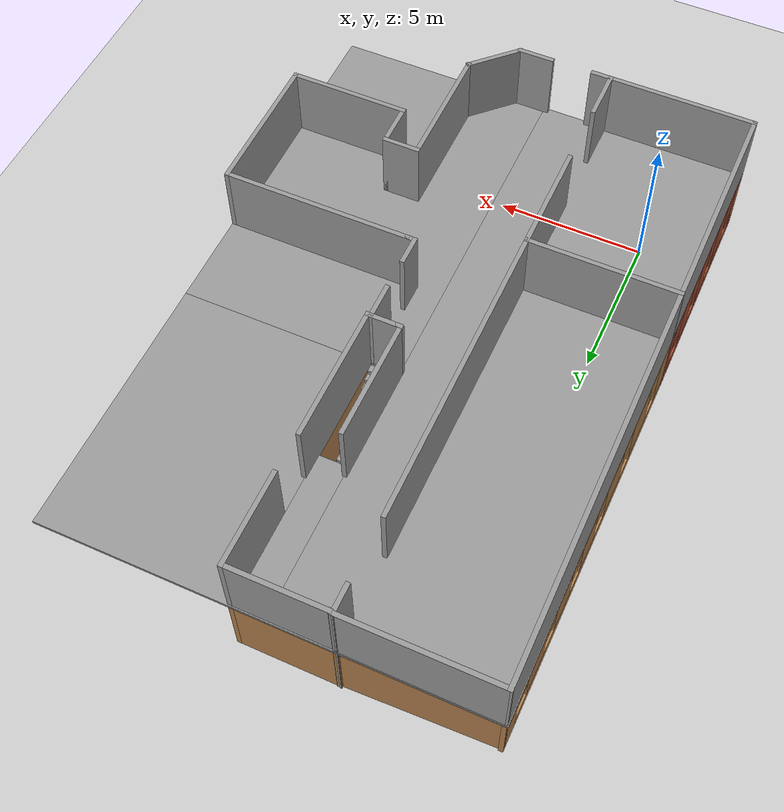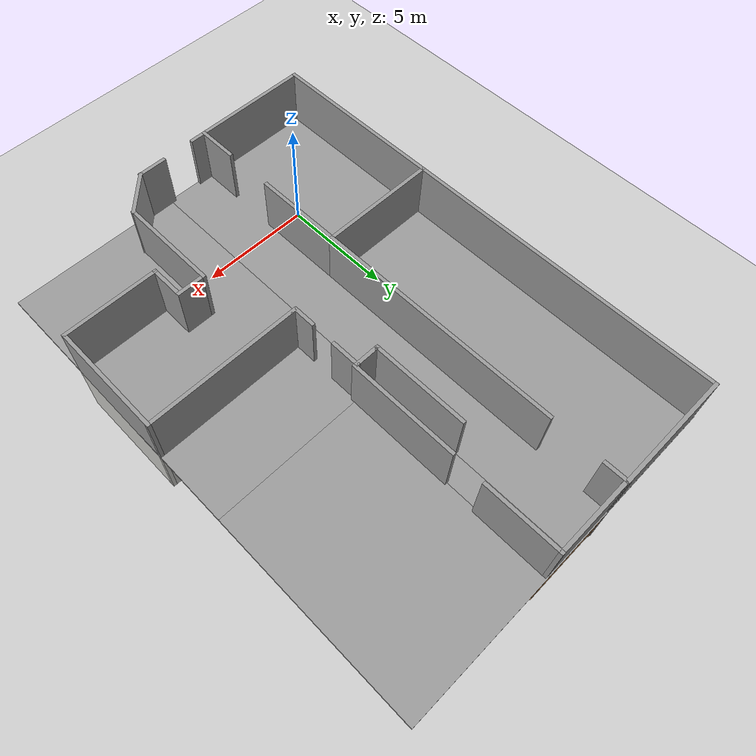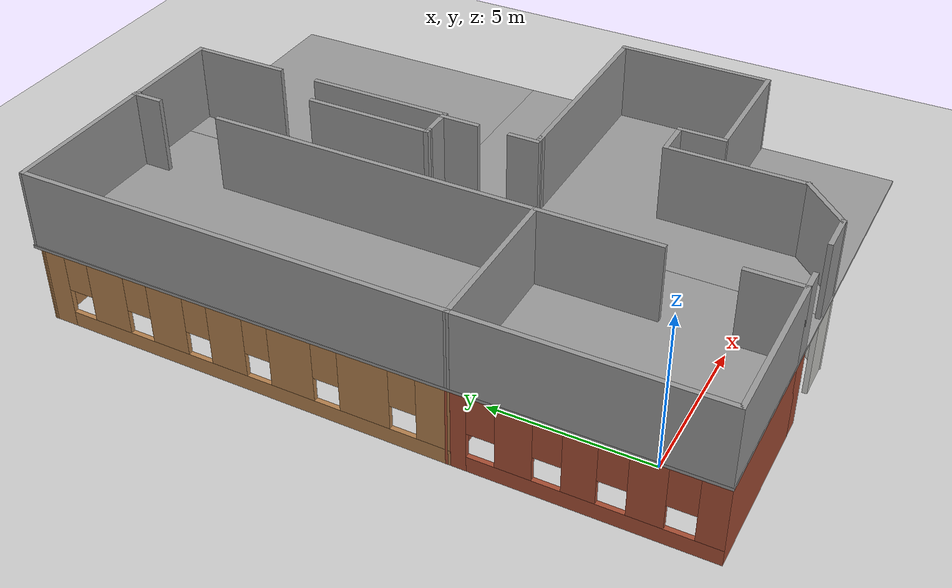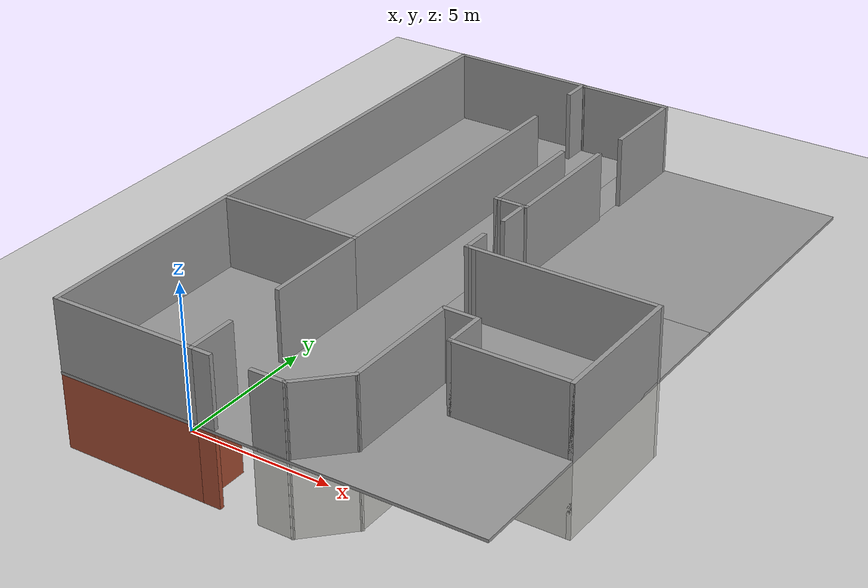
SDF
<sdf version="1.6">
 <world name="default">
  <model name="ground_plane">
   <static>1</static>
   <link name="link">
    <collision name="collision">
     <geometry><plane><normal>0 0 1</normal><size>100 100</size></plane></geometry>
     <surface><friction><ode><mu>100</mu><mu2>50</mu2></ode></friction></surface>
    </collision>
    <visual name="visual">
     <cast_shadows>0</cast_shadows>
     <geometry><plane><normal>0 0 1</normal><size>100 100</size></plane></geometry>
     <material>
      <script><uri>file://media/materials/scripts/gazebo.material</uri><name>Gazebo/Grey</name></script>
     </material>
    </visual>
   </link>
  </model>
  <model name="RPL_Floor7_Sketch">
   <pose>4.78977 7.76362 0 0 -0 0</pose>
   <link name="Floor_0">
    <pose>0.000155 0 2.5 0 -0 0</pose>
    <visual name="Floor_0_Visual_0">
     <pose>-3.6687 0 0.05 0 -0 0</pose>
     <geometry><box><size>7.07279 20.6611 0.1</size></box></geometry>
     <material>
      <script><uri>file://media/materials/scripts/gazebo.material</uri><name>Gazebo/Grey</name></script>
      <ambient>1 1 1 1</ambient>
     </material>
    </visual>
    <collision name="Floor_0_Collision_0">
     <geometry><box><size>7.07279 20.6611 0.1</size></box></geometry>
     <pose>-3.6687 0 0.05 0 -0 0</pose>
    </collision>
    <visual name="Floor_0_Visual_1">
     <pose>3.53639 -4.35677 0.05 0 -0 0</pose>
     <geometry><box><size>7.3374 11.9476 0.1</size></box></geometry>
     <material>
      <script><uri>file://media/materials/scripts/gazebo.material</uri><name>Gazebo/Grey</name></script>
      <ambient>1 1 1 1</ambient>
     </material>
    </visual>
    <collision name="Floor_0_Collision_1">
     <geometry><box><size>7.3374 11.9476 0.1</size></box></geometry>
     <pose>3.53639 -4.35677 0.05 0 -0 0</pose>
    </collision>
    <visual name="Floor_0_Visual_2">
     <pose>4.03639 5.97379 0.05 0 -0 0</pose>
     <geometry><box><size>6.3374 8.71353 0.1</size></box></geometry>
     <material>
      <script><uri>file://media/materials/scripts/gazebo.material</uri><name>Gazebo/Grey</name></script>
      <ambient>1 1 1 1</ambient>
     </material>
    </visual>
    <collision name="Floor_0_Collision_2">
     <geometry><box><size>6.3374 8.71353 0.1</size></box></geometry>
     <pose>4.03639 5.97379 0.05 0 -0 0</pose>
    </collision>
    <visual name="Floor_0_Visual_3">
     <pose>0.367695 7.72379 0.05 0 -0 0</pose>
     <geometry><box><size>1 5.21353 0.1</size></box></geometry>
     <material>
      <script><uri>file://media/materials/scripts/gazebo.material</uri><name>Gazebo/Grey</name></script>
      <ambient>1 1 1 1</ambient>
     </material>
    </visual>
    <collision name="Floor_0_Collision_3">
     <geometry><box><size>1 5.21353 0.1</size></box></geometry>
     <pose>0.367695 7.72379 0.05 0 -0 0</pose>
    </collision>
   </link>
   <link name="Stairs_0">
    <visual name="Stairs_0_Visual_0">
     <pose>0.36785 5.00036 0.083333 0 -0 0</pose>
     <geometry><box><size>1 0.233333 0.166667</size></box></geometry>
     <material>
      <script><uri>file://media/materials/scripts/gazebo.material</uri><name>Gazebo/Grey</name></script>
      <ambient>1 1 1 1</ambient>
     </material>
    </visual>
    <collision name="Stairs_0_Collision_0">
     <geometry><box><size>1 0.233333 0.166667</size></box></geometry>
     <pose>0.36785 5.00036 0.083333 0 -0 0</pose>
    </collision>
    <visual name="Stairs_0_Visual_1">
     <pose>0.36785 4.76702 0.25 0 -0 0</pose>
     <geometry><box><size>1 0.233333 0.166667</size></box></geometry>
     <material>
      <script><uri>file://media/materials/scripts/gazebo.material</uri><name>Gazebo/Grey</name></script>
      <ambient>1 1 1 1</ambient>
     </material>
    </visual>
    <collision name="Stairs_0_Collision_1">
     <geometry><box><size>1 0.233333 0.166667</size></box></geometry>
     <pose>0.36785 4.76702 0.25 0 -0 0</pose>
    </collision>
    <visual name="Stairs_0_Visual_2">
     <pose>0.36785 4.53369 0.416667 0 -0 0</pose>
     <geometry><box><size>1 0.233333 0.166667</size></box></geometry>
     <material>
      <script><uri>file://media/materials/scripts/gazebo.material</uri><name>Gazebo/Grey</name></script>
      <ambient>1 1 1 1</ambient>
     </material>
    </visual>
    <collision name="Stairs_0_Collision_2">
     <geometry><box><size>1 0.233333 0.166667</size></box></geometry>
     <pose>0.36785 4.53369 0.416667 0 -0 0</pose>
    </collision>
    <visual name="Stairs_0_Visual_3">
     <pose>0.36785 4.30036 0.583333 0 -0 0</pose>
     <geometry><box><size>1 0.233333 0.166667</size></box></geometry>
     <material>
      <script><uri>file://media/materials/scripts/gazebo.material</uri><name>Gazebo/Grey</name></script>
      <ambient>1 1 1 1</ambient>
     </material>
    </visual>
    <collision name="Stairs_0_Collision_3">
     <geometry><box><size>1 0.233333 0.166667</size></box></geometry>
     <pose>0.36785 4.30036 0.583333 0 -0 0</pose>
    </collision>
    <visual name="Stairs_0_Visual_4">
     <pose>0.36785 4.06702 0.75 0 -0 0</pose>
     <geometry><box><size>1 0.233333 0.166667</size></box></geometry>
     <material>
      <script><uri>file://media/materials/scripts/gazebo.material</uri><name>Gazebo/Grey</name></script>
      <ambient>1 1 1 1</ambient>
     </material>
    </visual>
    <collision name="Stairs_0_Collision_4">
     <geometry><box><size>1 0.233333 0.166667</size></box></geometry>
     <pose>0.36785 4.06702 0.75 0 -0 0</pose>
    </collision>
    <visual name="Stairs_0_Visual_5">
     <pose>0.36785 3.83369 0.916667 0 -0 0</pose>
     <geometry><box><size>1 0.233333 0.166667</size></box></geometry>
     <material>
      <script><uri>file://media/materials/scripts/gazebo.material</uri><name>Gazebo/Grey</name></script>
      <ambient>1 1 1 1</ambient>
     </material>
    </visual>
    <collision name="Stairs_0_Collision_5">
     <geometry><box><size>1 0.233333 0.166667</size></box></geometry>
     <pose>0.36785 3.83369 0.916667 0 -0 0</pose>
    </collision>
    <visual name="Stairs_0_Visual_6">
     <pose>0.36785 3.60036 1.08333 0 -0 0</pose>
     <geometry><box><size>1 0.233333 0.166667</size></box></geometry>
     <material>
      <script><uri>file://media/materials/scripts/gazebo.material</uri><name>Gazebo/Grey</name></script>
      <ambient>1 1 1 1</ambient>
     </material>
    </visual>
    <collision name="Stairs_0_Collision_6">
     <geometry><box><size>1 0.233333 0.166667</size></box></geometry>
     <pose>0.36785 3.60036 1.08333 0 -0 0</pose>
    </collision>
    <visual name="Stairs_0_Visual_7">
     <pose>0.36785 3.36702 1.25 0 -0 0</pose>
     <geometry><box><size>1 0.233333 0.166667</size></box></geometry>
     <material>
      <script><uri>file://media/materials/scripts/gazebo.material</uri><name>Gazebo/Grey</name></script>
      <ambient>1 1 1 1</ambient>
     </material>
    </visual>
    <collision name="Stairs_0_Collision_7">
     <geometry><box><size>1 0.233333 0.166667</size></box></geometry>
     <pose>0.36785 3.36702 1.25 0 -0 0</pose>
    </collision>
    <visual name="Stairs_0_Visual_8">
     <pose>0.36785 3.13369 1.41667 0 -0 0</pose>
     <geometry><box><size>1 0.233333 0.166667</size></box></geometry>
     <material>
      <script><uri>file://media/materials/scripts/gazebo.material</uri><name>Gazebo/Grey</name></script>
      <ambient>1 1 1 1</ambient>
     </material>
    </visual>
    <collision name="Stairs_0_Collision_8">
     <geometry><box><size>1 0.233333 0.166667</size></box></geometry>
     <pose>0.36785 3.13369 1.41667 0 -0 0</pose>
    </collision>
    <visual name="Stairs_0_Visual_9">
     <pose>0.36785 2.90036 1.58333 0 -0 0</pose>
     <geometry><box><size>1 0.233333 0.166667</size></box></geometry>
     <material>
      <script><uri>file://media/materials/scripts/gazebo.material</uri><name>Gazebo/Grey</name></script>
      <ambient>1 1 1 1</ambient>
     </material>
    </visual>
    <collision name="Stairs_0_Collision_9">
     <geometry><box><size>1 0.233333 0.166667</size></box></geometry>
     <pose>0.36785 2.90036 1.58333 0 -0 0</pose>
    </collision>
    <visual name="Stairs_0_Visual_10">
     <pose>0.36785 2.66702 1.75 0 -0 0</pose>
     <geometry><box><size>1 0.233333 0.166667</size></box></geometry>
     <material>
      <script><uri>file://media/materials/scripts/gazebo.material</uri><name>Gazebo/Grey</name></script>
      <ambient>1 1 1 1</ambient>
     </material>
    </visual>
    <collision name="Stairs_0_Collision_10">
     <geometry><box><size>1 0.233333 0.166667</size></box></geometry>
     <pose>0.36785 2.66702 1.75 0 -0 0</pose>
    </collision>
    <visual name="Stairs_0_Visual_11">
     <pose>0.36785 2.43369 1.91667 0 -0 0</pose>
     <geometry><box><size>1 0.233333 0.166667</size></box></geometry>
     <material>
      <script><uri>file://media/materials/scripts/gazebo.material</uri><name>Gazebo/Grey</name></script>
      <ambient>1 1 1 1</ambient>
     </material>
    </visual>
    <collision name="Stairs_0_Collision_11">
     <geometry><box><size>1 0.233333 0.166667</size></box></geometry>
     <pose>0.36785 2.43369 1.91667 0 -0 0</pose>
    </collision>
    <visual name="Stairs_0_Visual_12">
     <pose>0.36785 2.20036 2.08333 0 -0 0</pose>
     <geometry><box><size>1 0.233333 0.166667</size></box></geometry>
     <material>
      <script><uri>file://media/materials/scripts/gazebo.material</uri><name>Gazebo/Grey</name></script>
      <ambient>1 1 1 1</ambient>
     </material>
    </visual>
    <collision name="Stairs_0_Collision_12">
     <geometry><box><size>1 0.233333 0.166667</size></box></geometry>
     <pose>0.36785 2.20036 2.08333 0 -0 0</pose>
    </collision>
    <visual name="Stairs_0_Visual_13">
     <pose>0.36785 1.96702 2.25 0 -0 0</pose>
     <geometry><box><size>1 0.233333 0.166667</size></box></geometry>
     <material>
      <script><uri>file://media/materials/scripts/gazebo.material</uri><name>Gazebo/Grey</name></script>
      <ambient>1 1 1 1</ambient>
     </material>
    </visual>
    <collision name="Stairs_0_Collision_13">
     <geometry><box><size>1 0.233333 0.166667</size></box></geometry>
     <pose>0.36785 1.96702 2.25 0 -0 0</pose>
    </collision>
    <visual name="Stairs_0_Visual_14">
     <pose>0.36785 1.73369 2.41667 0 -0 0</pose>
     <geometry><box><size>1 0.233333 0.166667</size></box></geometry>
     <material>
      <script><uri>file://media/materials/scripts/gazebo.material</uri><name>Gazebo/Grey</name></script>
      <ambient>1 1 1 1</ambient>
     </material>
    </visual>
    <collision name="Stairs_0_Collision_14">
     <geometry><box><size>1 0.233333 0.166667</size></box></geometry>
     <pose>0.36785 1.73369 2.41667 0 -0 0</pose>
    </collision>
   </link>
   <link name="Wall_0">
    <collision name="Wall_0_Collision">
     <geometry><box><size>5 0.15 2.5</size></box></geometry>
     <pose>0 0 1.25 0 -0 0</pose>
    </collision>
    <visual name="Wall_0_Visual">
     <pose>0 0 1.25 0 -0 0</pose>
     <geometry><box><size>5 0.15 2.5</size></box></geometry>
     <material>
      <script><uri>file://media/materials/scripts/gazebo.material</uri><name>Gazebo/Bricks</name></script>
      <ambient>1 1 1 1</ambient>
     </material>
    </visual>
    <pose>-4.70477 -2.89037 0 0 -0 3.14159</pose>
   </link>
   <link name="Wall_10">
    <collision name="Wall_10_Collision">
     <geometry><box><size>10.25 0.15 2.5</size></box></geometry>
     <pose>0 0 1.25 0 -0 0</pose>
    </collision>
    <visual name="Wall_10_Visual">
     <pose>0 0 1.25 0 -0 0</pose>
     <geometry><box><size>10.25 0.15 2.5</size></box></geometry>
     <material>
      <script><uri>file://media/materials/scripts/gazebo.material</uri><name>Gazebo/Wood</name></script>
      <ambient>1 1 1 1</ambient>
     </material>
    </visual>
    <pose>-2.27977 2.15963 0 0 -0 1.5708</pose>
   </link>
   <link name="Wall_12">
    <collision name="Wall_12_Collision">
     <geometry><box><size>0.75 0.15 2.5</size></box></geometry>
     <pose>0 0 1.25 0 -0 0</pose>
    </collision>
    <visual name="Wall_12_Visual">
     <pose>0 0 1.25 0 -0 0</pose>
     <geometry><box><size>0.75 0.15 2.5</size></box></geometry>
     <material>
      <script><uri>file://media/materials/scripts/gazebo.material</uri><name>Gazebo/Bricks</name></script>
      <ambient>1 1 1 1</ambient>
     </material>
    </visual>
    <pose>-1.97977 -10.2404 0 0 -0 0</pose>
   </link>
   <link name="Wall_22">
    <collision name="Wall_22_Collision">
     <geometry><box><size>1.25 0.15 2.5</size></box></geometry>
     <pose>0 0 1.25 0 -0 0</pose>
    </collision>
    <visual name="Wall_22_Visual">
     <pose>0 0 1.25 0 -0 0</pose>
     <geometry><box><size>1.25 0.15 2.5</size></box></geometry>
     <material>
      <script><uri>file://media/materials/scripts/gazebo.material</uri><name>Gazebo/CeilingTiled</name></script>
      <ambient>1 1 1 1</ambient>
     </material>
    </visual>
    <pose>0.322098 -10.2245 0 0 -0 0</pose>
   </link>
   <link name="Wall_23">
    <collision name="Wall_23_Collision">
     <geometry><box><size>2 0.15 2.5</size></box></geometry>
     <pose>0 0 1.25 0 -0 0</pose>
    </collision>
    <visual name="Wall_23_Visual">
     <pose>0 0 1.25 0 -0 0</pose>
     <geometry><box><size>2 0.15 2.5</size></box></geometry>
     <material>
      <script><uri>file://media/materials/scripts/gazebo.material</uri><name>Gazebo/CeilingTiled</name></script>
      <ambient>1 1 1 1</ambient>
     </material>
    </visual>
    <pose>1.52617 -9.57042 0 0 -0 0.785398</pose>
   </link>
   <link name="Wall_24">
    <collision name="Wall_24_Collision">
     <geometry><box><size>4.25 0.15 2.5</size></box></geometry>
     <pose>0 0 1.25 0 -0 0</pose>
    </collision>
    <visual name="Wall_24_Visual">
     <pose>0 0 1.25 0 -0 0</pose>
     <geometry><box><size>4.25 0.15 2.5</size></box></geometry>
     <material>
      <script><uri>file://media/materials/scripts/gazebo.material</uri><name>Gazebo/CeilingTiled</name></script>
      <ambient>1 1 1 1</ambient>
     </material>
    </visual>
    <pose>2.18025 -6.86634 0 0 -0 1.5708</pose>
   </link>
   <link name="Wall_25">
    <collision name="Wall_25_Collision">
     <geometry><box><size>1.25 0.15 2.5</size></box></geometry>
     <pose>0 0 1.25 0 -0 0</pose>
    </collision>
    <visual name="Wall_25_Visual">
     <pose>0 0 1.25 0 -0 0</pose>
     <geometry><box><size>1.25 0.15 2.5</size></box></geometry>
     <material>
      <script><uri>file://media/materials/scripts/gazebo.material</uri><name>Gazebo/CeilingTiled</name></script>
      <ambient>1 1 1 1</ambient>
     </material>
    </visual>
    <pose>2.73025 -4.81634 0 0 -0 0</pose>
   </link>
   <link name="Wall_26">
    <collision name="Wall_26_Collision">
     <geometry><box><size>1.5 0.15 2.5</size></box></geometry>
     <pose>0 0 1.25 0 -0 0</pose>
    </collision>
    <visual name="Wall_26_Visual">
     <pose>0 0 1.25 0 -0 0</pose>
     <geometry><box><size>1.5 0.15 2.5</size></box></geometry>
     <material>
      <script><uri>file://media/materials/scripts/gazebo.material</uri><name>Gazebo/CeilingTiled</name></script>
      <ambient>1 1 1 1</ambient>
     </material>
    </visual>
    <pose>3.28025 -5.49134 0 0 0 -1.5708</pose>
   </link>
   <link name="Wall_27">
    <collision name="Wall_27_Collision">
     <geometry><box><size>4 0.15 2.5</size></box></geometry>
     <pose>0 0 1.25 0 -0 0</pose>
    </collision>
    <visual name="Wall_27_Visual">
     <pose>0 0 1.25 0 -0 0</pose>
     <geometry><box><size>4 0.15 2.5</size></box></geometry>
     <material>
      <script><uri>file://media/materials/scripts/gazebo.material</uri><name>Gazebo/CeilingTiled</name></script>
      <ambient>1 1 1 1</ambient>
     </material>
    </visual>
    <pose>5.20524 -6.16634 0 0 -0 0</pose>
   </link>
   <link name="Wall_28">
    <collision name="Wall_28_Collision">
     <geometry><box><size>4.8032 0.15 2.5</size></box></geometry>
     <pose>0 0 1.25 0 -0 0</pose>
    </collision>
    <visual name="Wall_28_Visual">
     <pose>0 0 1.25 0 -0 0</pose>
     <geometry><box><size>4.8032 0.15 2.5</size></box></geometry>
     <material>
      <script><uri>file://media/materials/scripts/gazebo.material</uri><name>Gazebo/CeilingTiled</name></script>
      <ambient>1 1 1 1</ambient>
     </material>
    </visual>
    <pose>7.13025 -3.83974 0 0 -0 1.5708</pose>
   </link>
   <link name="Wall_30">
    <collision name="Wall_30_Collision">
     <geometry><box><size>0.15 0.15 2.5</size></box></geometry>
     <pose>0 0 1.25 0 -0 0</pose>
    </collision>
    <visual name="Wall_30_Visual">
     <pose>0 0 1.25 0 -0 0</pose>
     <geometry><box><size>0.15 0.15 2.5</size></box></geometry>
     <material>
      <script><uri>file://media/materials/scripts/gazebo.material</uri><name>Gazebo/Grey</name></script>
      <ambient>1 1 1 1</ambient>
     </material>
    </visual>
    <pose>1.03025 -1.51314 0 0 -0 0</pose>
   </link>
   <link name="Wall_31">
    <collision name="Wall_31_Collision">
     <geometry><box><size>0.15 0.15 2.5</size></box></geometry>
     <pose>0 0 1.25 0 -0 0</pose>
    </collision>
    <visual name="Wall_31_Visual">
     <pose>0 0 1.25 0 -0 0</pose>
     <geometry><box><size>0.15 0.15 2.5</size></box></geometry>
     <material>
      <script><uri>file://media/materials/scripts/gazebo.material</uri><name>Gazebo/Grey</name></script>
      <ambient>1 1 1 1</ambient>
     </material>
    </visual>
    <pose>1.03025 -1.51314 0 0 -0 0</pose>
   </link>
   <link name="Wall_34">
    <collision name="Wall_34_Collision">
     <geometry><box><size>6.5 0.15 2.5</size></box></geometry>
     <pose>0 0 1.25 0 -0 0</pose>
    </collision>
    <visual name="Wall_34_Visual">
     <pose>0 0 1.25 0 -0 0</pose>
     <geometry><box><size>6.5 0.15 2.5</size></box></geometry>
     <material>
      <script><uri>file://media/materials/scripts/gazebo.material</uri><name>Gazebo/CeilingTiled</name></script>
      <ambient>1 1 1 1</ambient>
     </material>
    </visual>
    <pose>3.95525 -1.51314 0 0 -0 3.14159</pose>
   </link>
   <link name="Wall_35">
    <collision name="Wall_35_Collision">
     <geometry><box><size>1 0.15 2.5</size></box></geometry>
     <pose>0 0 1.25 0 -0 0</pose>
    </collision>
    <visual name="Wall_35_Visual">
     <pose>0 0 1.25 0 -0 0</pose>
     <geometry><box><size>1 0.15 2.5</size></box></geometry>
     <material>
      <script><uri>file://media/materials/scripts/gazebo.material</uri><name>Gazebo/Wood</name></script>
      <ambient>1 1 1 1</ambient>
     </material>
    </visual>
    <pose>0.780246 -1.08814 0 0 -0 1.5708</pose>
   </link>
   <link name="Wall_37">
    <collision name="Wall_37_Collision">
     <geometry><box><size>1.25 0.15 2.5</size></box></geometry>
     <pose>0 0 1.25 0 -0 0</pose>
    </collision>
    <visual name="Wall_37_Visual">
     <pose>0 0 1.25 0 -0 0</pose>
     <geometry><box><size>1.25 0.15 2.5</size></box></geometry>
     <material>
      <script><uri>file://media/materials/scripts/gazebo.material</uri><name>Gazebo/Wood</name></script>
      <ambient>1 1 1 1</ambient>
     </material>
    </visual>
    <pose>0.796113 0.980362 0 0 -0 1.5708</pose>
   </link>
   <link name="Wall_38">
    <collision name="Wall_38_Collision">
     <geometry><box><size>1 0.15 2.5</size></box></geometry>
     <pose>0 0 1.25 0 -0 0</pose>
    </collision>
    <visual name="Wall_38_Visual">
     <pose>0 0 1.25 0 -0 0</pose>
     <geometry><box><size>1 0.15 2.5</size></box></geometry>
     <material>
      <script><uri>file://media/materials/scripts/gazebo.material</uri><name>Gazebo/Wood</name></script>
      <ambient>1 1 1 1</ambient>
     </material>
    </visual>
    <pose>0.371113 1.53036 0 0 -0 3.14159</pose>
   </link>
   <link name="Wall_4">
    <pose>-7.12977 -6.56537 0 0 0 -1.5708</pose>
    <visual name="Wall_4_Visual_0">
     <pose>-3.45071 0 1.25 0 -0 0</pose>
     <geometry><box><size>0.598591 0.15 2.5</size></box></geometry>
     <material>
      <script><uri>file://media/materials/scripts/gazebo.material</uri><name>Gazebo/Bricks</name></script>
      <ambient>1 1 1 1</ambient>
     </material>
    </visual>
    <collision name="Wall_4_Collision_0">
     <geometry><box><size>0.598591 0.15 2.5</size></box></geometry>
     <pose>-3.45071 0 1.25 0 -0 0</pose>
    </collision>
    <visual name="Wall_4_Visual_1">
     <pose>0.299295 0 0.25 0 -0 0</pose>
     <geometry><box><size>6.90141 0.15 0.5</size></box></geometry>
     <material>
      <script><uri>file://media/materials/scripts/gazebo.material</uri><name>Gazebo/Bricks</name></script>
      <ambient>1 1 1 1</ambient>
     </material>
    </visual>
    <collision name="Wall_4_Collision_1">
     <geometry><box><size>6.90141 0.15 0.5</size></box></geometry>
     <pose>0.299295 0 0.25 0 -0 0</pose>
    </collision>
    <visual name="Wall_4_Visual_2">
     <pose>-1.83624 0 1.5 0 -0 0</pose>
     <geometry><box><size>1.03034 0.15 2</size></box></geometry>
     <material>
      <script><uri>file://media/materials/scripts/gazebo.material</uri><name>Gazebo/Bricks</name></script>
      <ambient>1 1 1 1</ambient>
     </material>
    </visual>
    <collision name="Wall_4_Collision_2">
     <geometry><box><size>1.03034 0.15 2</size></box></geometry>
     <pose>-1.83624 0 1.5 0 -0 0</pose>
    </collision>
    <visual name="Wall_4_Visual_3">
     <pose>-0.056191 0 1.5 0 -0 0</pose>
     <geometry><box><size>0.929767 0.15 2</size></box></geometry>
     <material>
      <script><uri>file://media/materials/scripts/gazebo.material</uri><name>Gazebo/Bricks</name></script>
      <ambient>1 1 1 1</ambient>
     </material>
    </visual>
    <collision name="Wall_4_Collision_3">
     <geometry><box><size>0.929767 0.15 2</size></box></geometry>
     <pose>-0.056191 0 1.5 0 -0 0</pose>
    </collision>
    <visual name="Wall_4_Visual_4">
     <pose>1.70375 0 1.5 0 -0 0</pose>
     <geometry><box><size>0.990108 0.15 2</size></box></geometry>
     <material>
      <script><uri>file://media/materials/scripts/gazebo.material</uri><name>Gazebo/Bricks</name></script>
      <ambient>1 1 1 1</ambient>
     </material>
    </visual>
    <collision name="Wall_4_Collision_4">
     <geometry><box><size>0.990108 0.15 2</size></box></geometry>
     <pose>1.70375 0 1.5 0 -0 0</pose>
    </collision>
    <visual name="Wall_4_Visual_5">
     <pose>3.3744 0 1.5 0 -0 0</pose>
     <geometry><box><size>0.751199 0.15 2</size></box></geometry>
     <material>
      <script><uri>file://media/materials/scripts/gazebo.material</uri><name>Gazebo/Bricks</name></script>
      <ambient>1 1 1 1</ambient>
     </material>
    </visual>
    <collision name="Wall_4_Collision_5">
     <geometry><box><size>0.751199 0.15 2</size></box></geometry>
     <pose>3.3744 0 1.5 0 -0 0</pose>
    </collision>
    <visual name="Wall_4_Visual_6">
     <pose>-2.75141 0 1.9 0 -0 0</pose>
     <geometry><box><size>0.8 0.15 1.2</size></box></geometry>
     <material>
      <script><uri>file://media/materials/scripts/gazebo.material</uri><name>Gazebo/Bricks</name></script>
      <ambient>1 1 1 1</ambient>
     </material>
    </visual>
    <collision name="Wall_4_Collision_6">
     <geometry><box><size>0.8 0.15 1.2</size></box></geometry>
     <pose>-2.75141 0 1.9 0 -0 0</pose>
    </collision>
    <visual name="Wall_4_Visual_7">
     <pose>-0.921074 0 1.9 0 -0 0</pose>
     <geometry><box><size>0.8 0.15 1.2</size></box></geometry>
     <material>
      <script><uri>file://media/materials/scripts/gazebo.material</uri><name>Gazebo/Bricks</name></script>
      <ambient>1 1 1 1</ambient>
     </material>
    </visual>
    <collision name="Wall_4_Collision_7">
     <geometry><box><size>0.8 0.15 1.2</size></box></geometry>
     <pose>-0.921074 0 1.9 0 -0 0</pose>
    </collision>
    <visual name="Wall_4_Visual_8">
     <pose>0.808693 0 1.9 0 -0 0</pose>
     <geometry><box><size>0.8 0.15 1.2</size></box></geometry>
     <material>
      <script><uri>file://media/materials/scripts/gazebo.material</uri><name>Gazebo/Bricks</name></script>
      <ambient>1 1 1 1</ambient>
     </material>
    </visual>
    <collision name="Wall_4_Collision_8">
     <geometry><box><size>0.8 0.15 1.2</size></box></geometry>
     <pose>0.808693 0 1.9 0 -0 0</pose>
    </collision>
    <visual name="Wall_4_Visual_9">
     <pose>2.5988 0 1.9 0 -0 0</pose>
     <geometry><box><size>0.8 0.15 1.2</size></box></geometry>
     <material>
      <script><uri>file://media/materials/scripts/gazebo.material</uri><name>Gazebo/Bricks</name></script>
      <ambient>1 1 1 1</ambient>
     </material>
    </visual>
    <collision name="Wall_4_Collision_9">
     <geometry><box><size>0.8 0.15 1.2</size></box></geometry>
     <pose>2.5988 0 1.9 0 -0 0</pose>
    </collision>
   </link>
   <link name="Wall_42">
    <collision name="Wall_42_Collision">
     <geometry><box><size>0.25 0.15 2.5</size></box></geometry>
     <pose>0 0 1.25 0 -0 0</pose>
    </collision>
    <visual name="Wall_42_Visual">
     <pose>0 0 1.25 0 -0 0</pose>
     <geometry><box><size>0.25 0.15 2.5</size></box></geometry>
     <material>
      <script><uri>file://media/materials/scripts/gazebo.material</uri><name>Gazebo/Grey</name></script>
      <ambient>1 1 1 1</ambient>
     </material>
    </visual>
    <pose>-0.103887 1.53036 0 0 -0 3.14159</pose>
   </link>
   <link name="Wall_43">
    <collision name="Wall_43_Collision">
     <geometry><box><size>4 0.15 2.5</size></box></geometry>
     <pose>0 0 1.25 0 -0 0</pose>
    </collision>
    <visual name="Wall_43_Visual">
     <pose>0 0 1.25 0 -0 0</pose>
     <geometry><box><size>4 0.15 2.5</size></box></geometry>
     <material>
      <script><uri>file://media/materials/scripts/gazebo.material</uri><name>Gazebo/Wood</name></script>
      <ambient>1 1 1 1</ambient>
     </material>
    </visual>
    <pose>-0.153887 3.45536 0 0 -0 1.5708</pose>
   </link>
   <link name="Wall_45">
    <collision name="Wall_45_Collision">
     <geometry><box><size>0.25 0.15 2.5</size></box></geometry>
     <pose>0 0 1.25 0 -0 0</pose>
    </collision>
    <visual name="Wall_45_Visual">
     <pose>0 0 1.25 0 -0 0</pose>
     <geometry><box><size>0.25 0.15 2.5</size></box></geometry>
     <material>
      <script><uri>file://media/materials/scripts/gazebo.material</uri><name>Gazebo/Grey</name></script>
      <ambient>1 1 1 1</ambient>
     </material>
    </visual>
    <pose>0.846114 1.53036 0 0 -0 0</pose>
   </link>
   <link name="Wall_46">
    <collision name="Wall_46_Collision">
     <geometry><box><size>4.5 0.15 2.5</size></box></geometry>
     <pose>0 0 1.25 0 -0 0</pose>
    </collision>
    <visual name="Wall_46_Visual">
     <pose>0 0 1.25 0 -0 0</pose>
     <geometry><box><size>4.5 0.15 2.5</size></box></geometry>
     <material>
      <script><uri>file://media/materials/scripts/gazebo.material</uri><name>Gazebo/Wood</name></script>
      <ambient>1 1 1 1</ambient>
     </material>
    </visual>
    <pose>0.896113 3.70536 0 0 -0 1.5708</pose>
   </link>
   <link name="Wall_48">
    <collision name="Wall_48_Collision">
     <geometry><box><size>3.10701 0.15 2.5</size></box></geometry>
     <pose>0 0 1.25 0 -0 0</pose>
    </collision>
    <visual name="Wall_48_Visual">
     <pose>0 0 1.25 0 -0 0</pose>
     <geometry><box><size>3.10701 0.15 2.5</size></box></geometry>
     <material>
      <script><uri>file://media/materials/scripts/gazebo.material</uri><name>Gazebo/Wood</name></script>
      <ambient>1 1 1 1</ambient>
     </material>
    </visual>
    <pose>0.946638 8.73432 0 0 -0 1.5708</pose>
   </link>
   <link name="Wall_5">
    <collision name="Wall_5_Collision">
     <geometry><box><size>5 0.15 2.5</size></box></geometry>
     <pose>0 0 1.25 0 -0 0</pose>
    </collision>
    <visual name="Wall_5_Visual">
     <pose>0 0 1.25 0 -0 0</pose>
     <geometry><box><size>5 0.15 2.5</size></box></geometry>
     <material>
      <script><uri>file://media/materials/scripts/gazebo.material</uri><name>Gazebo/Bricks</name></script>
      <ambient>1 1 1 1</ambient>
     </material>
    </visual>
    <pose>-4.70477 -10.2404 0 0 -0 0</pose>
   </link>
   <link name="Wall_56">
    <collision name="Wall_56_Collision">
     <geometry><box><size>3.25 0.15 2.5</size></box></geometry>
     <pose>0 0 1.25 0 -0 0</pose>
    </collision>
    <visual name="Wall_56_Visual">
     <pose>0 0 1.25 0 -0 0</pose>
     <geometry><box><size>3.25 0.15 2.5</size></box></geometry>
     <material>
      <script><uri>file://media/materials/scripts/gazebo.material</uri><name>Gazebo/Wood</name></script>
      <ambient>1 1 1 1</ambient>
     </material>
    </visual>
    <pose>-0.603362 10.2128 0 0 -0 3.14159</pose>
   </link>
   <link name="Wall_57">
    <collision name="Wall_57_Collision">
     <geometry><box><size>0.25 0.15 2.5</size></box></geometry>
     <pose>0 0 1.25 0 -0 0</pose>
    </collision>
    <visual name="Wall_57_Visual">
     <pose>0 0 1.25 0 -0 0</pose>
     <geometry><box><size>0.25 0.15 2.5</size></box></geometry>
     <material>
      <script><uri>file://media/materials/scripts/gazebo.material</uri><name>Gazebo/Grey</name></script>
      <ambient>1 1 1 1</ambient>
     </material>
    </visual>
    <pose>-2.20166 10.2258 0 0 -0 2.87979</pose>
   </link>
   <link name="Wall_58">
    <collision name="Wall_58_Collision">
     <geometry><box><size>0.946497 0.15 2.5</size></box></geometry>
     <pose>0 0 1.25 0 -0 0</pose>
    </collision>
    <visual name="Wall_58_Visual">
     <pose>0 0 1.25 0 -0 0</pose>
     <geometry><box><size>0.946497 0.15 2.5</size></box></geometry>
     <material>
      <script><uri>file://media/materials/scripts/gazebo.material</uri><name>Gazebo/Wood</name></script>
      <ambient>1 1 1 1</ambient>
     </material>
    </visual>
    <pose>-2.24995 9.84045 0 0 0 -1.5708</pose>
   </link>
   <link name="Wall_6">
    <collision name="Wall_6_Collision">
     <geometry><box><size>1.75 0.15 2.5</size></box></geometry>
     <pose>0 0 1.25 0 -0 0</pose>
    </collision>
    <visual name="Wall_6_Visual">
     <pose>0 0 1.25 0 -0 0</pose>
     <geometry><box><size>1.75 0.15 2.5</size></box></geometry>
     <material>
      <script><uri>file://media/materials/scripts/gazebo.material</uri><name>Gazebo/Bricks</name></script>
      <ambient>1 1 1 1</ambient>
     </material>
    </visual>
    <pose>-2.27977 -9.44037 0 0 -0 1.5708</pose>
   </link>
   <link name="Wall_60">
    <collision name="Wall_60_Collision">
     <geometry><box><size>4.94918 0.15 2.5</size></box></geometry>
     <pose>0 0 1.25 0 -0 0</pose>
    </collision>
    <visual name="Wall_60_Visual">
     <pose>0 0 1.25 0 -0 0</pose>
     <geometry><box><size>4.94918 0.15 2.5</size></box></geometry>
     <material>
      <script><uri>file://media/materials/scripts/gazebo.material</uri><name>Gazebo/Wood</name></script>
      <ambient>1 1 1 1</ambient>
     </material>
    </visual>
    <pose>-4.6482 10.1049 0 0 0 -3.10814</pose>
   </link>
   <link name="Wall_61">
    <pose>-7.08811 3.59391 0 0 0 -1.57722</pose>
    <visual name="Wall_61_Visual_0">
     <pose>-6.15402 0 1.25 0 -0 0</pose>
     <geometry><box><size>0.810784 0.15 2.5</size></box></geometry>
     <material>
      <script><uri>file://media/materials/scripts/gazebo.material</uri><name>Gazebo/Wood</name></script>
      <ambient>1 1 1 1</ambient>
     </material>
    </visual>
    <collision name="Wall_61_Collision_0">
     <geometry><box><size>0.810784 0.15 2.5</size></box></geometry>
     <pose>-6.15402 0 1.25 0 -0 0</pose>
    </collision>
    <visual name="Wall_61_Visual_1">
     <pose>0.405392 0 0.25 0 -0 0</pose>
     <geometry><box><size>12.308 0.15 0.5</size></box></geometry>
     <material>
      <script><uri>file://media/materials/scripts/gazebo.material</uri><name>Gazebo/Wood</name></script>
      <ambient>1 1 1 1</ambient>
     </material>
    </visual>
    <collision name="Wall_61_Collision_1">
     <geometry><box><size>12.308 0.15 0.5</size></box></geometry>
     <pose>0.405392 0 0.25 0 -0 0</pose>
    </collision>
    <visual name="Wall_61_Visual_2">
     <pose>-4.31789 0 1.5 0 -0 0</pose>
     <geometry><box><size>1.26148 0.15 2</size></box></geometry>
     <material>
      <script><uri>file://media/materials/scripts/gazebo.material</uri><name>Gazebo/Wood</name></script>
      <ambient>1 1 1 1</ambient>
     </material>
    </visual>
    <collision name="Wall_61_Collision_2">
     <geometry><box><size>1.26148 0.15 2</size></box></geometry>
     <pose>-4.31789 0 1.5 0 -0 0</pose>
    </collision>
    <visual name="Wall_61_Visual_3">
     <pose>-2.2832 0 1.5 0 -0 0</pose>
     <geometry><box><size>1.20791 0.15 2</size></box></geometry>
     <material>
      <script><uri>file://media/materials/scripts/gazebo.material</uri><name>Gazebo/Wood</name></script>
      <ambient>1 1 1 1</ambient>
     </material>
    </visual>
    <collision name="Wall_61_Collision_3">
     <geometry><box><size>1.20791 0.15 2</size></box></geometry>
     <pose>-2.2832 0 1.5 0 -0 0</pose>
    </collision>
    <visual name="Wall_61_Visual_4">
     <pose>-0.301468 0 1.5 0 -0 0</pose>
     <geometry><box><size>1.15554 0.15 2</size></box></geometry>
     <material>
      <script><uri>file://media/materials/scripts/gazebo.material</uri><name>Gazebo/Wood</name></script>
      <ambient>1 1 1 1</ambient>
     </material>
    </visual>
    <collision name="Wall_61_Collision_4">
     <geometry><box><size>1.15554 0.15 2</size></box></geometry>
     <pose>-0.301468 0 1.5 0 -0 0</pose>
    </collision>
    <visual name="Wall_61_Visual_5">
     <pose>1.75977 0 1.5 0 -0 0</pose>
     <geometry><box><size>1.36694 0.15 2</size></box></geometry>
     <material>
      <script><uri>file://media/materials/scripts/gazebo.material</uri><name>Gazebo/Wood</name></script>
      <ambient>1 1 1 1</ambient>
     </material>
    </visual>
    <collision name="Wall_61_Collision_5">
     <geometry><box><size>1.36694 0.15 2</size></box></geometry>
     <pose>1.75977 0 1.5 0 -0 0</pose>
    </collision>
    <visual name="Wall_61_Visual_6">
     <pose>4.00574 0 1.5 0 -0 0</pose>
     <geometry><box><size>1.52501 0.15 2</size></box></geometry>
     <material>
      <script><uri>file://media/materials/scripts/gazebo.material</uri><name>Gazebo/Wood</name></script>
      <ambient>1 1 1 1</ambient>
     </material>
    </visual>
    <collision name="Wall_61_Collision_6">
     <geometry><box><size>1.52501 0.15 2</size></box></geometry>
     <pose>4.00574 0 1.5 0 -0 0</pose>
    </collision>
    <visual name="Wall_61_Visual_7">
     <pose>6.06383 0 1.5 0 -0 0</pose>
     <geometry><box><size>0.991168 0.15 2</size></box></geometry>
     <material>
      <script><uri>file://media/materials/scripts/gazebo.material</uri><name>Gazebo/Wood</name></script>
      <ambient>1 1 1 1</ambient>
     </material>
    </visual>
    <collision name="Wall_61_Collision_7">
     <geometry><box><size>0.991168 0.15 2</size></box></geometry>
     <pose>6.06383 0 1.5 0 -0 0</pose>
    </collision>
    <visual name="Wall_61_Visual_8">
     <pose>-5.34863 0 1.9 0 -0 0</pose>
     <geometry><box><size>0.8 0.15 1.2</size></box></geometry>
     <material>
      <script><uri>file://media/materials/scripts/gazebo.material</uri><name>Gazebo/Wood</name></script>
      <ambient>1 1 1 1</ambient>
     </material>
    </visual>
    <collision name="Wall_61_Collision_8">
     <geometry><box><size>0.8 0.15 1.2</size></box></geometry>
     <pose>-5.34863 0 1.9 0 -0 0</pose>
    </collision>
    <visual name="Wall_61_Visual_9">
     <pose>-3.28715 0 1.9 0 -0 0</pose>
     <geometry><box><size>0.8 0.15 1.2</size></box></geometry>
     <material>
      <script><uri>file://media/materials/scripts/gazebo.material</uri><name>Gazebo/Wood</name></script>
      <ambient>1 1 1 1</ambient>
     </material>
    </visual>
    <collision name="Wall_61_Collision_9">
     <geometry><box><size>0.8 0.15 1.2</size></box></geometry>
     <pose>-3.28715 0 1.9 0 -0 0</pose>
    </collision>
    <visual name="Wall_61_Visual_10">
     <pose>-1.27924 0 1.9 0 -0 0</pose>
     <geometry><box><size>0.8 0.15 1.2</size></box></geometry>
     <material>
      <script><uri>file://media/materials/scripts/gazebo.material</uri><name>Gazebo/Wood</name></script>
      <ambient>1 1 1 1</ambient>
     </material>
    </visual>
    <collision name="Wall_61_Collision_10">
     <geometry><box><size>0.8 0.15 1.2</size></box></geometry>
     <pose>-1.27924 0 1.9 0 -0 0</pose>
    </collision>
    <visual name="Wall_61_Visual_11">
     <pose>0.676303 0 1.9 0 -0 0</pose>
     <geometry><box><size>0.8 0.15 1.2</size></box></geometry>
     <material>
      <script><uri>file://media/materials/scripts/gazebo.material</uri><name>Gazebo/Wood</name></script>
      <ambient>1 1 1 1</ambient>
     </material>
    </visual>
    <collision name="Wall_61_Collision_11">
     <geometry><box><size>0.8 0.15 1.2</size></box></geometry>
     <pose>0.676303 0 1.9 0 -0 0</pose>
    </collision>
    <visual name="Wall_61_Visual_12">
     <pose>2.84324 0 1.9 0 -0 0</pose>
     <geometry><box><size>0.8 0.15 1.2</size></box></geometry>
     <material>
      <script><uri>file://media/materials/scripts/gazebo.material</uri><name>Gazebo/Wood</name></script>
      <ambient>1 1 1 1</ambient>
     </material>
    </visual>
    <collision name="Wall_61_Collision_12">
     <geometry><box><size>0.8 0.15 1.2</size></box></geometry>
     <pose>2.84324 0 1.9 0 -0 0</pose>
    </collision>
    <visual name="Wall_61_Visual_13">
     <pose>5.16825 0 1.9 0 -0 0</pose>
     <geometry><box><size>0.8 0.15 1.2</size></box></geometry>
     <material>
      <script><uri>file://media/materials/scripts/gazebo.material</uri><name>Gazebo/Wood</name></script>
      <ambient>1 1 1 1</ambient>
     </material>
    </visual>
    <collision name="Wall_61_Collision_13">
     <geometry><box><size>0.8 0.15 1.2</size></box></geometry>
     <pose>5.16825 0 1.9 0 -0 0</pose>
    </collision>
   </link>
   <link name="Wall_63">
    <collision name="Wall_63_Collision">
     <geometry><box><size>5 0.15 2.5</size></box></geometry>
     <pose>0 0 1.25 0 -0 0</pose>
    </collision>
    <visual name="Wall_63_Visual">
     <pose>0 0 1.25 0 -0 0</pose>
     <geometry><box><size>5 0.15 2.5</size></box></geometry>
     <material>
      <script><uri>file://media/materials/scripts/gazebo.material</uri><name>Gazebo/Grey</name></script>
      <ambient>1 1 1 1</ambient>
     </material>
    </visual>
    <pose>-4.70477 -2.89037 2.5 0 -0 3.14159</pose>
   </link>
   <link name="Wall_64">
    <collision name="Wall_64_Collision">
     <geometry><box><size>7.5 0.15 2.5</size></box></geometry>
     <pose>0 0 1.25 0 -0 0</pose>
    </collision>
    <visual name="Wall_64_Visual">
     <pose>0 0 1.25 0 -0 0</pose>
     <geometry><box><size>7.5 0.15 2.5</size></box></geometry>
     <material>
      <script><uri>file://media/materials/scripts/gazebo.material</uri><name>Gazebo/Grey</name></script>
      <ambient>1 1 1 1</ambient>
     </material>
    </visual>
    <pose>-7.12977 -6.56537 2.5 0 0 -1.5708</pose>
   </link>
   <link name="Wall_65">
    <collision name="Wall_65_Collision">
     <geometry><box><size>5 0.15 2.5</size></box></geometry>
     <pose>0 0 1.25 0 -0 0</pose>
    </collision>
    <visual name="Wall_65_Visual">
     <pose>0 0 1.25 0 -0 0</pose>
     <geometry><box><size>5 0.15 2.5</size></box></geometry>
     <material>
      <script><uri>file://media/materials/scripts/gazebo.material</uri><name>Gazebo/Grey</name></script>
      <ambient>1 1 1 1</ambient>
     </material>
    </visual>
    <pose>-4.70477 -10.2404 2.5 0 -0 0</pose>
   </link>
   <link name="Wall_66">
    <collision name="Wall_66_Collision">
     <geometry><box><size>1.75 0.15 2.5</size></box></geometry>
     <pose>0 0 1.25 0 -0 0</pose>
    </collision>
    <visual name="Wall_66_Visual">
     <pose>0 0 1.25 0 -0 0</pose>
     <geometry><box><size>1.75 0.15 2.5</size></box></geometry>
     <material>
      <script><uri>file://media/materials/scripts/gazebo.material</uri><name>Gazebo/Grey</name></script>
      <ambient>1 1 1 1</ambient>
     </material>
    </visual>
    <pose>-2.27977 -9.44037 2.5 0 -0 1.5708</pose>
   </link>
   <link name="Wall_67">
    <collision name="Wall_67_Collision">
     <geometry><box><size>3.75 0.15 2.5</size></box></geometry>
     <pose>0 0 1.25 0 -0 0</pose>
    </collision>
    <visual name="Wall_67_Visual">
     <pose>0 0 1.25 0 -0 0</pose>
     <geometry><box><size>3.75 0.15 2.5</size></box></geometry>
     <material>
      <script><uri>file://media/materials/scripts/gazebo.material</uri><name>Gazebo/Grey</name></script>
      <ambient>1 1 1 1</ambient>
     </material>
    </visual>
    <pose>-2.27977 -4.69037 2.5 0 0 -1.5708</pose>
   </link>
   <link name="Wall_68">
    <collision name="Wall_68_Collision">
     <geometry><box><size>10.25 0.15 2.5</size></box></geometry>
     <pose>0 0 1.25 0 -0 0</pose>
    </collision>
    <visual name="Wall_68_Visual">
     <pose>0 0 1.25 0 -0 0</pose>
     <geometry><box><size>10.25 0.15 2.5</size></box></geometry>
     <material>
      <script><uri>file://media/materials/scripts/gazebo.material</uri><name>Gazebo/Grey</name></script>
      <ambient>1 1 1 1</ambient>
     </material>
    </visual>
    <pose>-2.27977 2.15963 2.5 0 -0 1.5708</pose>
   </link>
   <link name="Wall_69">
    <collision name="Wall_69_Collision">
     <geometry><box><size>0.75 0.15 2.5</size></box></geometry>
     <pose>0 0 1.25 0 -0 0</pose>
    </collision>
    <visual name="Wall_69_Visual">
     <pose>0 0 1.25 0 -0 0</pose>
     <geometry><box><size>0.75 0.15 2.5</size></box></geometry>
     <material>
      <script><uri>file://media/materials/scripts/gazebo.material</uri><name>Gazebo/Grey</name></script>
      <ambient>1 1 1 1</ambient>
     </material>
    </visual>
    <pose>-1.97977 -10.2404 2.5 0 -0 0</pose>
   </link>
   <link name="Wall_70">
    <collision name="Wall_70_Collision">
     <geometry><box><size>1.25 0.15 2.5</size></box></geometry>
     <pose>0 0 1.25 0 -0 0</pose>
    </collision>
    <visual name="Wall_70_Visual">
     <pose>0 0 1.25 0 -0 0</pose>
     <geometry><box><size>1.25 0.15 2.5</size></box></geometry>
     <material>
      <script><uri>file://media/materials/scripts/gazebo.material</uri><name>Gazebo/Grey</name></script>
      <ambient>1 1 1 1</ambient>
     </material>
    </visual>
    <pose>0.322098 -10.2245 2.5 0 -0 0</pose>
   </link>
   <link name="Wall_71">
    <collision name="Wall_71_Collision">
     <geometry><box><size>2 0.15 2.5</size></box></geometry>
     <pose>0 0 1.25 0 -0 0</pose>
    </collision>
    <visual name="Wall_71_Visual">
     <pose>0 0 1.25 0 -0 0</pose>
     <geometry><box><size>2 0.15 2.5</size></box></geometry>
     <material>
      <script><uri>file://media/materials/scripts/gazebo.material</uri><name>Gazebo/Grey</name></script>
      <ambient>1 1 1 1</ambient>
     </material>
    </visual>
    <pose>1.52617 -9.57042 2.5 0 -0 0.785398</pose>
   </link>
   <link name="Wall_72">
    <collision name="Wall_72_Collision">
     <geometry><box><size>4.25 0.15 2.5</size></box></geometry>
     <pose>0 0 1.25 0 -0 0</pose>
    </collision>
    <visual name="Wall_72_Visual">
     <pose>0 0 1.25 0 -0 0</pose>
     <geometry><box><size>4.25 0.15 2.5</size></box></geometry>
     <material>
      <script><uri>file://media/materials/scripts/gazebo.material</uri><name>Gazebo/Grey</name></script>
      <ambient>1 1 1 1</ambient>
     </material>
    </visual>
    <pose>2.18025 -6.86634 2.5 0 -0 1.5708</pose>
   </link>
   <link name="Wall_73">
    <collision name="Wall_73_Collision">
     <geometry><box><size>1.25 0.15 2.5</size></box></geometry>
     <pose>0 0 1.25 0 -0 0</pose>
    </collision>
    <visual name="Wall_73_Visual">
     <pose>0 0 1.25 0 -0 0</pose>
     <geometry><box><size>1.25 0.15 2.5</size></box></geometry>
     <material>
      <script><uri>file://media/materials/scripts/gazebo.material</uri><name>Gazebo/Grey</name></script>
      <ambient>1 1 1 1</ambient>
     </material>
    </visual>
    <pose>2.73025 -4.81634 2.5 0 -0 0</pose>
   </link>
   <link name="Wall_74">
    <collision name="Wall_74_Collision">
     <geometry><box><size>1.5 0.15 2.5</size></box></geometry>
     <pose>0 0 1.25 0 -0 0</pose>
    </collision>
    <visual name="Wall_74_Visual">
     <pose>0 0 1.25 0 -0 0</pose>
     <geometry><box><size>1.5 0.15 2.5</size></box></geometry>
     <material>
      <script><uri>file://media/materials/scripts/gazebo.material</uri><name>Gazebo/Grey</name></script>
      <ambient>1 1 1 1</ambient>
     </material>
    </visual>
    <pose>3.28025 -5.49134 2.5 0 0 -1.5708</pose>
   </link>
   <link name="Wall_75">
    <collision name="Wall_75_Collision">
     <geometry><box><size>4 0.15 2.5</size></box></geometry>
     <pose>0 0 1.25 0 -0 0</pose>
    </collision>
    <visual name="Wall_75_Visual">
     <pose>0 0 1.25 0 -0 0</pose>
     <geometry><box><size>4 0.15 2.5</size></box></geometry>
     <material>
      <script><uri>file://media/materials/scripts/gazebo.material</uri><name>Gazebo/Grey</name></script>
      <ambient>1 1 1 1</ambient>
     </material>
    </visual>
    <pose>5.20525 -6.16634 2.5 0 -0 0</pose>
   </link>
   <link name="Wall_76">
    <collision name="Wall_76_Collision">
     <geometry><box><size>4.8032 0.15 2.5</size></box></geometry>
     <pose>0 0 1.25 0 -0 0</pose>
    </collision>
    <visual name="Wall_76_Visual">
     <pose>0 0 1.25 0 -0 0</pose>
     <geometry><box><size>4.8032 0.15 2.5</size></box></geometry>
     <material>
      <script><uri>file://media/materials/scripts/gazebo.material</uri><name>Gazebo/Grey</name></script>
      <ambient>1 1 1 1</ambient>
     </material>
    </visual>
    <pose>7.13025 -3.83974 2.5 0 -0 1.5708</pose>
   </link>
   <link name="Wall_77">
    <collision name="Wall_77_Collision">
     <geometry><box><size>0.15 0.15 2.5</size></box></geometry>
     <pose>0 0 1.25 0 -0 0</pose>
    </collision>
    <visual name="Wall_77_Visual">
     <pose>0 0 1.25 0 -0 0</pose>
     <geometry><box><size>0.15 0.15 2.5</size></box></geometry>
     <material>
      <script><uri>file://media/materials/scripts/gazebo.material</uri><name>Gazebo/Grey</name></script>
      <ambient>1 1 1 1</ambient>
     </material>
    </visual>
    <pose>1.03025 -1.51314 2.5 0 -0 0</pose>
   </link>
   <link name="Wall_78">
    <collision name="Wall_78_Collision">
     <geometry><box><size>0.15 0.15 2.5</size></box></geometry>
     <pose>0 0 1.25 0 -0 0</pose>
    </collision>
    <visual name="Wall_78_Visual">
     <pose>0 0 1.25 0 -0 0</pose>
     <geometry><box><size>0.15 0.15 2.5</size></box></geometry>
     <material>
      <script><uri>file://media/materials/scripts/gazebo.material</uri><name>Gazebo/Grey</name></script>
      <ambient>1 1 1 1</ambient>
     </material>
    </visual>
    <pose>1.03025 -1.51314 2.5 0 -0 0</pose>
   </link>
   <link name="Wall_79">
    <collision name="Wall_79_Collision">
     <geometry><box><size>6.5 0.15 2.5</size></box></geometry>
     <pose>0 0 1.25 0 -0 0</pose>
    </collision>
    <visual name="Wall_79_Visual">
     <pose>0 0 1.25 0 -0 0</pose>
     <geometry><box><size>6.5 0.15 2.5</size></box></geometry>
     <material>
      <script><uri>file://media/materials/scripts/gazebo.material</uri><name>Gazebo/Grey</name></script>
      <ambient>1 1 1 1</ambient>
     </material>
    </visual>
    <pose>3.95525 -1.51314 2.5 0 -0 3.14159</pose>
   </link>
   <link name="Wall_8">
    <collision name="Wall_8_Collision">
     <geometry><box><size>3.75 0.15 2.5</size></box></geometry>
     <pose>0 0 1.25 0 -0 0</pose>
    </collision>
    <visual name="Wall_8_Visual">
     <pose>0 0 1.25 0 -0 0</pose>
     <geometry><box><size>3.75 0.15 2.5</size></box></geometry>
     <material>
      <script><uri>file://media/materials/scripts/gazebo.material</uri><name>Gazebo/Bricks</name></script>
      <ambient>1 1 1 1</ambient>
     </material>
    </visual>
    <pose>-2.27977 -4.69037 0 0 0 -1.5708</pose>
   </link>
   <link name="Wall_80">
    <collision name="Wall_80_Collision">
     <geometry><box><size>1 0.15 2.5</size></box></geometry>
     <pose>0 0 1.25 0 -0 0</pose>
    </collision>
    <visual name="Wall_80_Visual">
     <pose>0 0 1.25 0 -0 0</pose>
     <geometry><box><size>1 0.15 2.5</size></box></geometry>
     <material>
      <script><uri>file://media/materials/scripts/gazebo.material</uri><name>Gazebo/Grey</name></script>
      <ambient>1 1 1 1</ambient>
     </material>
    </visual>
    <pose>0.780246 -1.08814 2.5 0 -0 1.5708</pose>
   </link>
   <link name="Wall_81">
    <collision name="Wall_81_Collision">
     <geometry><box><size>1.25 0.15 2.5</size></box></geometry>
     <pose>0 0 1.25 0 -0 0</pose>
    </collision>
    <visual name="Wall_81_Visual">
     <pose>0 0 1.25 0 -0 0</pose>
     <geometry><box><size>1.25 0.15 2.5</size></box></geometry>
     <material>
      <script><uri>file://media/materials/scripts/gazebo.material</uri><name>Gazebo/Grey</name></script>
      <ambient>1 1 1 1</ambient>
     </material>
    </visual>
    <pose>0.796113 0.980362 2.5 0 -0 1.5708</pose>
   </link>
   <link name="Wall_82">
    <collision name="Wall_82_Collision">
     <geometry><box><size>1 0.15 2.5</size></box></geometry>
     <pose>0 0 1.25 0 -0 0</pose>
    </collision>
    <visual name="Wall_82_Visual">
     <pose>0 0 1.25 0 -0 0</pose>
     <geometry><box><size>1 0.15 2.5</size></box></geometry>
     <material>
      <script><uri>file://media/materials/scripts/gazebo.material</uri><name>Gazebo/Grey</name></script>
      <ambient>1 1 1 1</ambient>
     </material>
    </visual>
    <pose>0.371113 1.53036 2.5 0 -0 3.14159</pose>
   </link>
   <link name="Wall_83">
    <collision name="Wall_83_Collision">
     <geometry><box><size>0.25 0.15 2.5</size></box></geometry>
     <pose>0 0 1.25 0 -0 0</pose>
    </collision>
    <visual name="Wall_83_Visual">
     <pose>0 0 1.25 0 -0 0</pose>
     <geometry><box><size>0.25 0.15 2.5</size></box></geometry>
     <material>
      <script><uri>file://media/materials/scripts/gazebo.material</uri><name>Gazebo/Grey</name></script>
      <ambient>1 1 1 1</ambient>
     </material>
    </visual>
    <pose>-0.103887 1.53036 2.5 0 -0 3.14159</pose>
   </link>
   <link name="Wall_84">
    <collision name="Wall_84_Collision">
     <geometry><box><size>4 0.15 2.5</size></box></geometry>
     <pose>0 0 1.25 0 -0 0</pose>
    </collision>
    <visual name="Wall_84_Visual">
     <pose>0 0 1.25 0 -0 0</pose>
     <geometry><box><size>4 0.15 2.5</size></box></geometry>
     <material>
      <script><uri>file://media/materials/scripts/gazebo.material</uri><name>Gazebo/Grey</name></script>
      <ambient>1 1 1 1</ambient>
     </material>
    </visual>
    <pose>-0.153887 3.45536 2.5 0 -0 1.5708</pose>
   </link>
   <link name="Wall_85">
    <collision name="Wall_85_Collision">
     <geometry><box><size>0.25 0.15 2.5</size></box></geometry>
     <pose>0 0 1.25 0 -0 0</pose>
    </collision>
    <visual name="Wall_85_Visual">
     <pose>0 0 1.25 0 -0 0</pose>
     <geometry><box><size>0.25 0.15 2.5</size></box></geometry>
     <material>
      <script><uri>file://media/materials/scripts/gazebo.material</uri><name>Gazebo/Grey</name></script>
      <ambient>1 1 1 1</ambient>
     </material>
    </visual>
    <pose>0.846113 1.53036 2.5 0 -0 0</pose>
   </link>
   <link name="Wall_86">
    <collision name="Wall_86_Collision">
     <geometry><box><size>4.5 0.15 2.5</size></box></geometry>
     <pose>0 0 1.25 0 -0 0</pose>
    </collision>
    <visual name="Wall_86_Visual">
     <pose>0 0 1.25 0 -0 0</pose>
     <geometry><box><size>4.5 0.15 2.5</size></box></geometry>
     <material>
      <script><uri>file://media/materials/scripts/gazebo.material</uri><name>Gazebo/Grey</name></script>
      <ambient>1 1 1 1</ambient>
     </material>
    </visual>
    <pose>0.896113 3.70536 2.5 0 -0 1.5708</pose>
   </link>
   <link name="Wall_87">
    <collision name="Wall_87_Collision">
     <geometry><box><size>3.10701 0.15 2.5</size></box></geometry>
     <pose>0 0 1.25 0 -0 0</pose>
    </collision>
    <visual name="Wall_87_Visual">
     <pose>0 0 1.25 0 -0 0</pose>
     <geometry><box><size>3.10701 0.15 2.5</size></box></geometry>
     <material>
      <script><uri>file://media/materials/scripts/gazebo.material</uri><name>Gazebo/Grey</name></script>
      <ambient>1 1 1 1</ambient>
     </material>
    </visual>
    <pose>0.946638 8.73432 2.5 0 -0 1.5708</pose>
   </link>
   <link name="Wall_88">
    <collision name="Wall_88_Collision">
     <geometry><box><size>3.25 0.15 2.5</size></box></geometry>
     <pose>0 0 1.25 0 -0 0</pose>
    </collision>
    <visual name="Wall_88_Visual">
     <pose>0 0 1.25 0 -0 0</pose>
     <geometry><box><size>3.25 0.15 2.5</size></box></geometry>
     <material>
      <script><uri>file://media/materials/scripts/gazebo.material</uri><name>Gazebo/Grey</name></script>
      <ambient>1 1 1 1</ambient>
     </material>
    </visual>
    <pose>-0.603362 10.2128 2.5 0 -0 3.14159</pose>
   </link>
   <link name="Wall_89">
    <collision name="Wall_89_Collision">
     <geometry><box><size>0.25 0.15 2.5</size></box></geometry>
     <pose>0 0 1.25 0 -0 0</pose>
    </collision>
    <visual name="Wall_89_Visual">
     <pose>0 0 1.25 0 -0 0</pose>
     <geometry><box><size>0.25 0.15 2.5</size></box></geometry>
     <material>
      <script><uri>file://media/materials/scripts/gazebo.material</uri><name>Gazebo/Grey</name></script>
      <ambient>1 1 1 1</ambient>
     </material>
    </visual>
    <pose>-2.20166 10.2258 2.5 0 -0 2.87979</pose>
   </link>
   <link name="Wall_90">
    <collision name="Wall_90_Collision">
     <geometry><box><size>1 0.15 2.5</size></box></geometry>
     <pose>0 0 1.25 0 -0 0</pose>
    </collision>
    <visual name="Wall_90_Visual">
     <pose>0 0 1.25 0 -0 0</pose>
     <geometry><box><size>1 0.15 2.5</size></box></geometry>
     <material>
      <script><uri>file://media/materials/scripts/gazebo.material</uri><name>Gazebo/Grey</name></script>
      <ambient>1 1 1 1</ambient>
     </material>
    </visual>
    <pose>-2.24995 9.8137 2.5 0 0 -1.5708</pose>
   </link>
   <link name="Wall_91">
    <collision name="Wall_91_Collision">
     <geometry><box><size>5 0.15 2.5</size></box></geometry>
     <pose>0 0 1.25 0 -0 0</pose>
    </collision>
    <visual name="Wall_91_Visual">
     <pose>0 0 1.25 0 -0 0</pose>
     <geometry><box><size>5 0.15 2.5</size></box></geometry>
     <material>
      <script><uri>file://media/materials/scripts/gazebo.material</uri><name>Gazebo/Grey</name></script>
      <ambient>1 1 1 1</ambient>
     </material>
    </visual>
    <pose>-4.67495 10.2387 2.5 0 -0 3.14159</pose>
   </link>
   <link name="Wall_92">
    <collision name="Wall_92_Collision">
     <geometry><box><size>13.2791 0.15 2.5</size></box></geometry>
     <pose>0 0 1.25 0 -0 0</pose>
    </collision>
    <visual name="Wall_92_Visual">
     <pose>0 0 1.25 0 -0 0</pose>
     <geometry><box><size>13.2791 0.15 2.5</size></box></geometry>
     <material>
      <script><uri>file://media/materials/scripts/gazebo.material</uri><name>Gazebo/Grey</name></script>
      <ambient>1 1 1 1</ambient>
     </material>
    </visual>
    <pose>-7.11486 3.67416 2.5 0 0 -1.57307</pose>
   </link>
   <static>1</static>
  </model>
 </world>
</sdf>
